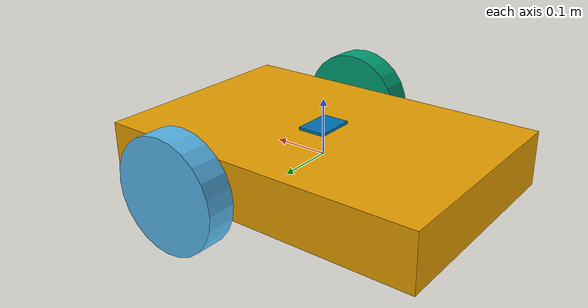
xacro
<?xml version='1.0'?>

<robot name="myrobot" xmlns:xacro="http://www.ros.org/wiki/xacro">

  <xacro:property name="cameraSize" value="0.05"/>
  <xacro:property name="cameraMass" value="0.1"/>

  <xacro:include filename="$(find test_description)/src/urdf/test.gazebo" />
  <!--xacro:include filename="$(find test_description)/urdf/materials.xacro" /-->
  <!--xacro:include filename="$(find mybot_description)/urdf/macros.xacro" /-->

<!--Chassis Link /-->

  <link name='chassis'>
    <pose>0 0 0 0 0 0</pose>

    <inertial>
      <mass value="10.0"/>
      <origin xyz="0.0 0 0.05" rpy=" 0 0 0"/>
      <inertia
          ixx="0.5" ixy="0" ixz="0"
          iyy="1.0" iyz="0"
          izz="0.1"
      />
    </inertial>

    <collision name='collision'>
      <geometry>
        <box size=".6 .4 .1"/>
      </geometry>
    </collision>

    <visual name='chassis_visual'>
      <origin xyz="0 0 0" rpy=" 0 0 0"/>
      <geometry>
        <box size=".6 .4 .1"/>
      </geometry>
    </visual>

    <collision name='caster_collision'>
      <origin xyz="-0.2 0 -0.05" rpy=" 0 0 0"/>
      <geometry>
        <sphere radius="0.05"/>
      </geometry>
      <surface>
        <friction>
          <ode>
            <mu>0</mu>
            <mu2>0</mu2>
            <slip1>1.0</slip1>
            <slip2>1.0</slip2>
          </ode>
        </friction>
      </surface>
    </collision>

    <visual name='caster_visual'>
      <origin xyz="-0.2 0 -0.05" rpy=" 0 0 0"/>
      <geometry>
        <sphere radius="0.05"/>
      </geometry>
    </visual>
  </link>

<!--left wheel Joint /-->

  <joint type="continuous" name="left_wheel_hinge">
    <origin xyz="0.1 0.25 0" rpy="0 0 0"/>
    <child link="left_wheel"/>
    <parent link="chassis"/>
    <axis xyz="0 1 0" rpy="0 0 0"/>
    <limit effort="100" velocity="100"/>
    <joint_properties damping="0.0" friction="0.0"/>
  </joint>

<!--left wheel Link /-->

  <link name="left_wheel">
    <origin xyz="0.1 0.2 0.1" rpy="0 1.5707 1.5707"/>
    <collision name="collision">
      <origin xyz="0 0 0" rpy="0 1.5707 1.5707"/>
      <geometry>
        <cylinder radius="0.1" length="0.05"/>
      </geometry>
    </collision>
    <visual name="left_wheel_visual">
      <origin xyz="0 0 0" rpy="0 1.5707 1.5707"/>
      <geometry>
        <cylinder radius="0.1" length="0.05"/>
      </geometry>
    </visual>
    <inertial>
      <origin xyz="0 0 0" rpy="0 1.5707 1.5707"/>
      <mass value="5"/>
      <cylinder_inertia m="5" r="0.1" h="0.05"/>
      <inertia
        ixx="1.0" ixy="0.0" ixz="0.0"
        iyy="1.0" iyz="0.0"
        izz="1.0"/>
    </inertial>
  </link>

<!--Right wheel joint/-->
  <joint type="continuous" name="right_wheel_hinge">
    <origin xyz="0.1 -0.25 0" rpy="0 0 0"/>
    <!--origin xyz="0.1 -0.13 0" rpy="0 1.5707 1.5707"/-->
    <child link="right_wheel"/>
    <parent link="chassis"/>
    <axis xyz="0 1 0" rpy="0 0 0"/>
    <limit effort="100" velocity="100"/>
    <joint_properties damping="0.0" friction="0.0"/>
  </joint>

<!--Right Wheel link /-->

  <link name="right_wheel">
    <origin xyz="0 0 0" rpy="0 1.5707 1.5707"/>
    <collision name="collision">
      <origin xyz="0 0 0" rpy="0 1.5707 1.5707"/>
      <geometry>
        <cylinder radius="0.1" length="0.05"/>
      </geometry>
    </collision>
    <visual name="right_wheel_visual">
      <origin xyz="0 0 0" rpy="0 1.5707 1.5707"/>
      <geometry>
        <cylinder radius="0.1" length="0.05"/>
      </geometry>
    </visual>
    <inertial>
      <origin xyz="0 0 0" rpy="0 1.5707 1.5707"/>
      <mass value="5"/>
      <cylinder_inertia m="5" r="0.1" h="0.05"/>
      <inertia
        ixx="1.0" ixy="0.0" ixz="0.0"
        iyy="1.0" iyz="0.0"
        izz="1.0"/>
    </inertial>
  </link>

  <joint name="camera_optical_joint" type="fixed">
    <!-- these values have to be these values otherwise the gazebo camera
        image won't be aligned properly with the frame it is supposedly
        originating from -->
    <origin xyz="0 0 0" rpy="${-pi/2} 0 ${-pi/2}"/>
    <parent link="camera_link"/>
    <child link="camera_link_optical"/>
  </joint>

<link name="camera_link_optical">
  </link>

<!--Kinect joint/-->

<joint type="fixed" name="kinect_joint">
<origin xyz="0 0 .05" rpy="0 0 0"/>
<!--limit velocity="1" effort="100" upper="1.57" lower="-1.57"/-->
<child link="camera_link"/>
    <parent link="chassis"/>
    <axis xyz="0 0 1" rpy="0 0 0"/>

</joint>

<!--Kinect link/-->

<link name="camera_link">

	<visual>

		<orgin xyz="0 0 0" rpy="0 0 0" />

		<geometry>

		<box size="0.05 0.07 0.01"/>

		</geometry>

	</visual>

</link>

</robot>
